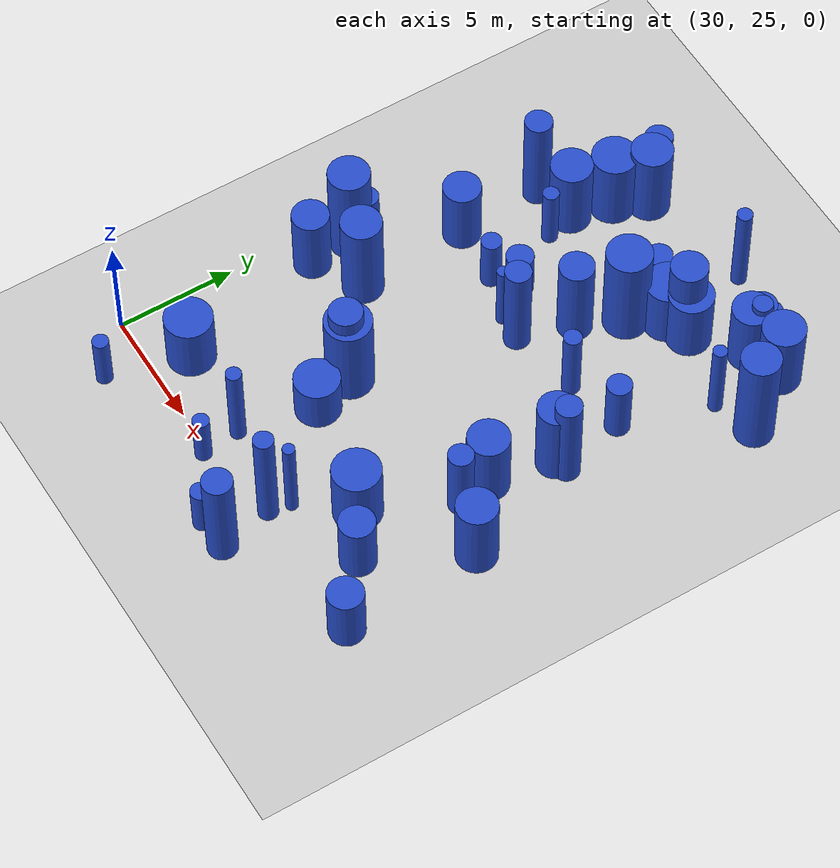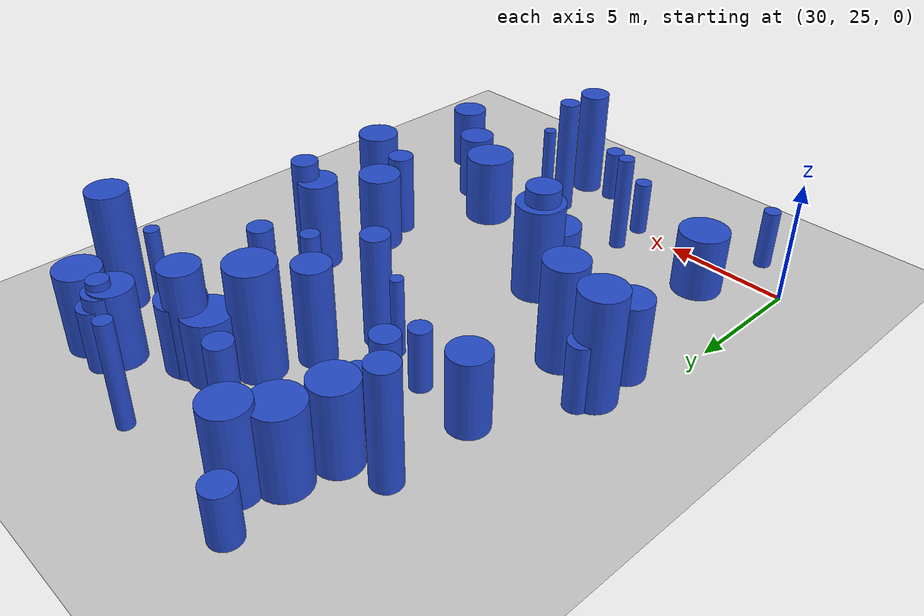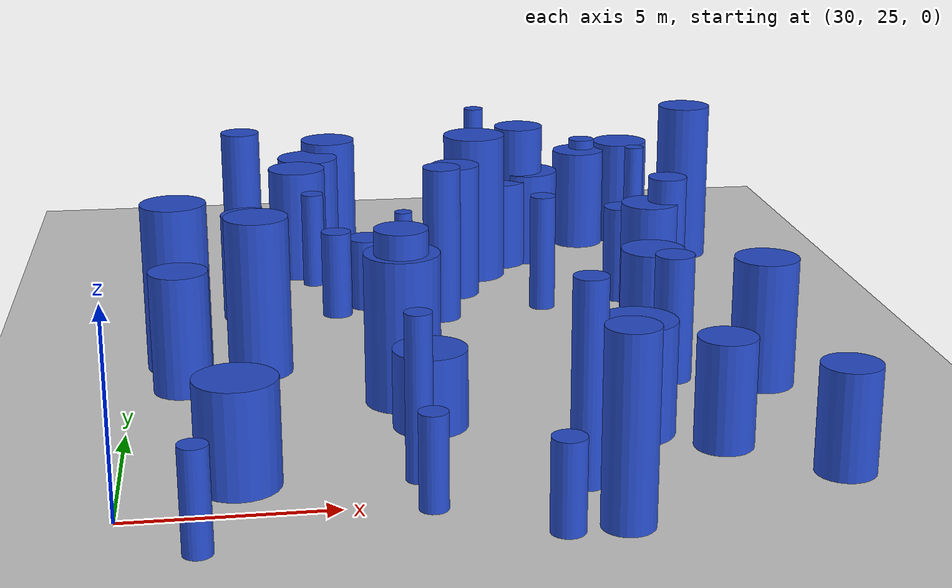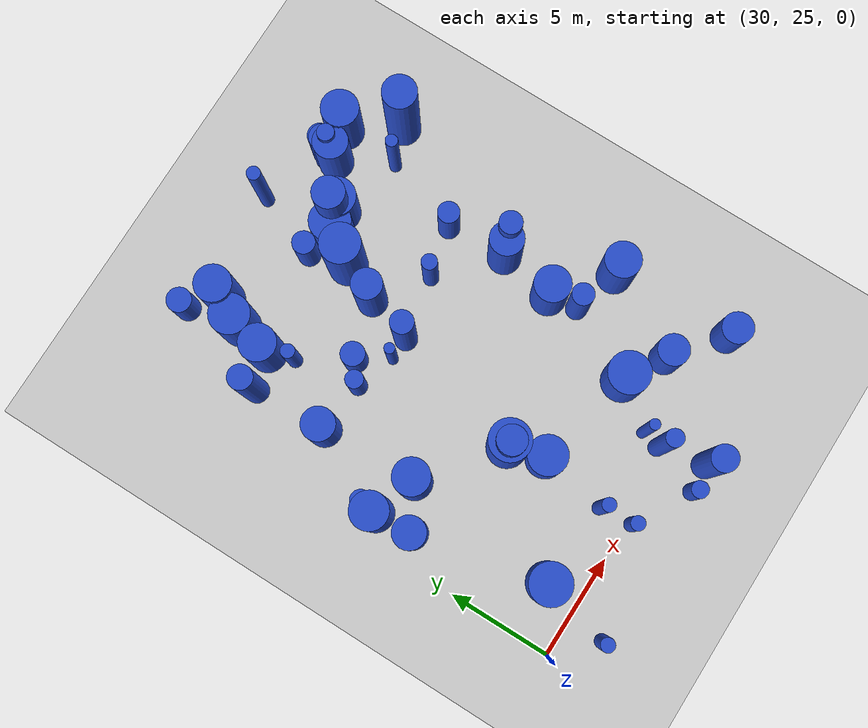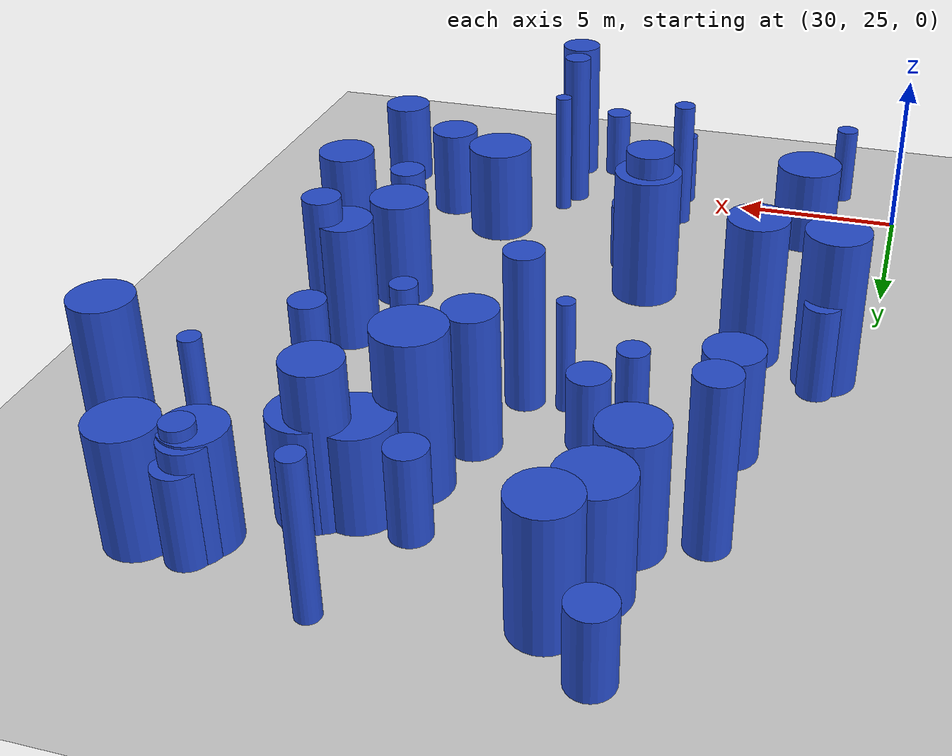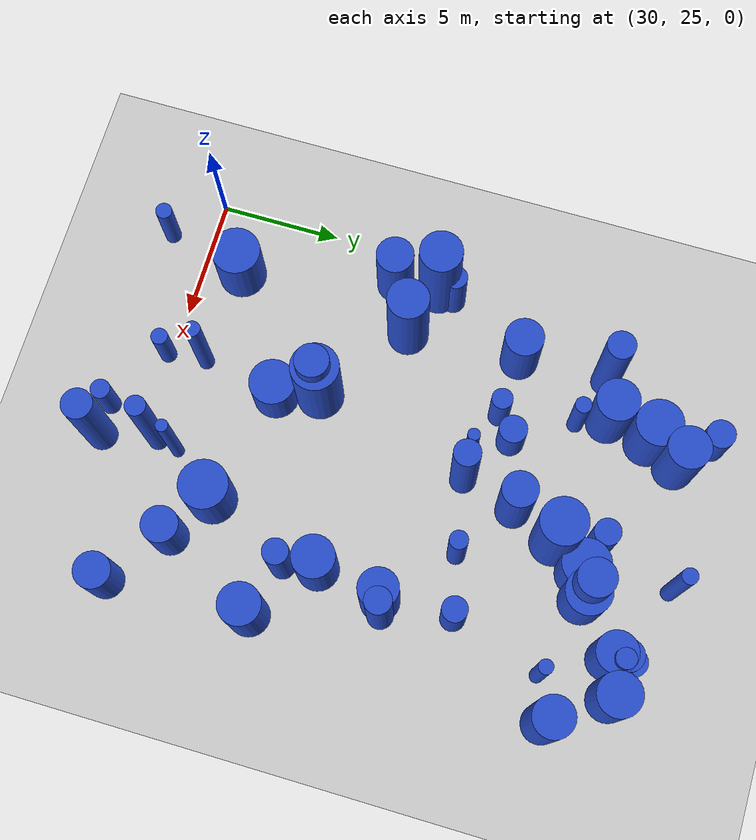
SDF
<sdf version="1.6">
 <world name="default">
  <model name="ground_plane">
   <static>1</static>
   <link name="link">
    <collision name="collision">
     <geometry><plane><normal>0 0 1</normal><size>100 100</size></plane></geometry>
     <surface><friction><ode><mu>100</mu><mu2>50</mu2></ode></friction></surface>
    </collision>
    <visual name="visual">
     <cast_shadows>0</cast_shadows>
     <geometry><plane><normal>0 0 1</normal><size>100 100</size></plane></geometry>
     <material>
      <script><uri>file://media/materials/scripts/gazebo.material</uri><name>Gazebo/Grey</name></script>
     </material>
    </visual>
   </link>
  </model>
  <model name="0">
   <static>0</static>
   <link name="link">
    <inertial>
     <mass>2</mass>
     <inertia><ixx>3.55486</ixx><ixy>0</ixy><ixz>0</ixz><iyy>3.55486</iyy><iyz>0</iyz><izz>0.297884</izz></inertia>
    </inertial>
    <collision name="collision">
     <geometry><cylinder><length>4.52056</length><radius>0.545787</radius></cylinder></geometry>
     <surface><contact><collide_without_contact>1</collide_without_contact></contact></surface>
    </collision>
    <visual name="visual">
     <geometry><cylinder><length>4.52056</length><radius>0.545787</radius></cylinder></geometry>
     <material>
      <script><uri>file://media/materials/scripts/gazebo.material</uri><name>Gazebo/Blue</name></script>
     </material>
    </visual>
    <gravity>0</gravity>
   </link>
   <pose>38.7282 38.0226 2.26028 0 -0 0</pose>
  </model>
  <model name="3">
   <static>0</static>
   <link name="link">
    <inertial>
     <mass>2</mass>
     <inertia><ixx>1.79748</ixx><ixy>0</ixy><ixz>0</ixz><iyy>1.79748</iyy><iyz>0</iyz><izz>0.403289</izz></inertia>
    </inertial>
    <collision name="collision">
     <geometry><cylinder><length>3.09435</length><radius>0.635051</radius></cylinder></geometry>
     <surface><contact><collide_without_contact>1</collide_without_contact></contact></surface>
    </collision>
    <visual name="visual">
     <geometry><cylinder><length>3.09435</length><radius>0.635051</radius></cylinder></geometry>
     <material>
      <script><uri>file://media/materials/scripts/gazebo.material</uri><name>Gazebo/Blue</name></script>
     </material>
    </visual>
    <gravity>0</gravity>
   </link>
   <pose>44.145 45.8026 1.54718 0 -0 0</pose>
  </model>
  <model name="7">
   <static>0</static>
   <link name="link">
    <inertial>
     <mass>2</mass>
     <inertia><ixx>4.24686</ixx><ixy>0</ixy><ixz>0</ixz><iyy>4.24686</iyy><iyz>0</iyz><izz>0.171142</izz></inertia>
    </inertial>
    <collision name="collision">
     <geometry><cylinder><length>4.99677</length><radius>0.413693</radius></cylinder></geometry>
     <surface><contact><collide_without_contact>1</collide_without_contact></contact></surface>
    </collision>
    <visual name="visual">
     <geometry><cylinder><length>4.99677</length><radius>0.413693</radius></cylinder></geometry>
     <material>
      <script><uri>file://media/materials/scripts/gazebo.material</uri><name>Gazebo/Blue</name></script>
     </material>
    </visual>
    <gravity>0</gravity>
   </link>
   <pose>40.5992 25.5949 2.49839 0 -0 0</pose>
  </model>
  <model name="11">
   <static>0</static>
   <link name="link">
    <inertial>
     <mass>2</mass>
     <inertia><ixx>1.48597</ixx><ixy>0</ixy><ixz>0</ixz><iyy>1.48597</iyy><iyz>0</iyz><izz>0.264549</izz></inertia>
    </inertial>
    <collision name="collision">
     <geometry><cylinder><length>2.84994</length><radius>0.514344</radius></cylinder></geometry>
     <surface><contact><collide_without_contact>1</collide_without_contact></contact></surface>
    </collision>
    <visual name="visual">
     <geometry><cylinder><length>2.84994</length><radius>0.514344</radius></cylinder></geometry>
     <material>
      <script><uri>file://media/materials/scripts/gazebo.material</uri><name>Gazebo/Blue</name></script>
     </material>
    </visual>
    <gravity>0</gravity>
   </link>
   <pose>44.2752 39.1553 1.42497 0 -0 0</pose>
  </model>
  <model name="15">
   <static>0</static>
   <link name="link">
    <inertial>
     <mass>2</mass>
     <inertia><ixx>1.70661</ixx><ixy>0</ixy><ixz>0</ixz><iyy>1.70661</iyy><iyz>0</iyz><izz>0.956436</izz></inertia>
    </inertial>
    <collision name="collision">
     <geometry><cylinder><length>2.71484</length><radius>0.977976</radius></cylinder></geometry>
     <surface><contact><collide_without_contact>1</collide_without_contact></contact></surface>
    </collision>
    <visual name="visual">
     <geometry><cylinder><length>2.71484</length><radius>0.977976</radius></cylinder></geometry>
     <material>
      <script><uri>file://media/materials/scripts/gazebo.material</uri><name>Gazebo/Blue</name></script>
     </material>
    </visual>
    <gravity>0</gravity>
   </link>
   <pose>41.1423 43.5016 1.35742 0 -0 0</pose>
  </model>
  <model name="18">
   <static>0</static>
   <link name="link">
    <inertial>
     <mass>2</mass>
     <inertia><ixx>2.27941</ixx><ixy>0</ixy><ixz>0</ixz><iyy>2.27941</iyy><iyz>0</iyz><izz>0.900366</izz></inertia>
    </inertial>
    <collision name="collision">
     <geometry><cylinder><length>3.31291</length><radius>0.948876</radius></cylinder></geometry>
     <surface><contact><collide_without_contact>1</collide_without_contact></contact></surface>
    </collision>
    <visual name="visual">
     <geometry><cylinder><length>3.31291</length><radius>0.948876</radius></cylinder></geometry>
     <material>
      <script><uri>file://media/materials/scripts/gazebo.material</uri><name>Gazebo/Blue</name></script>
     </material>
    </visual>
    <gravity>0</gravity>
   </link>
   <pose>35.1638 44.8172 1.65646 0 -0 0</pose>
  </model>
  <model name="24">
   <static>0</static>
   <link name="link">
    <inertial>
     <mass>2</mass>
     <inertia><ixx>2.07239</ixx><ixy>0</ixy><ixz>0</ixz><iyy>2.07239</iyy><iyz>0</iyz><izz>0.74145</izz></inertia>
    </inertial>
    <collision name="collision">
     <geometry><cylinder><length>3.19531</length><radius>0.861075</radius></cylinder></geometry>
     <surface><contact><collide_without_contact>1</collide_without_contact></contact></surface>
    </collision>
    <visual name="visual">
     <geometry><cylinder><length>3.19531</length><radius>0.861075</radius></cylinder></geometry>
     <material>
      <script><uri>file://media/materials/scripts/gazebo.material</uri><name>Gazebo/Blue</name></script>
     </material>
    </visual>
    <gravity>0</gravity>
   </link>
   <pose>43.9047 33.4741 1.59766 0 -0 0</pose>
  </model>
  <model name="25">
   <static>0</static>
   <link name="link">
    <inertial>
     <mass>2</mass>
     <inertia><ixx>2.06566</ixx><ixy>0</ixy><ixz>0</ixz><iyy>2.06566</iyy><iyz>0</iyz><izz>0.169636</izz></inertia>
    </inertial>
    <collision name="collision">
     <geometry><cylinder><length>3.44747</length><radius>0.411869</radius></cylinder></geometry>
     <surface><contact><collide_without_contact>1</collide_without_contact></contact></surface>
    </collision>
    <visual name="visual">
     <geometry><cylinder><length>3.44747</length><radius>0.411869</radius></cylinder></geometry>
     <material>
      <script><uri>file://media/materials/scripts/gazebo.material</uri><name>Gazebo/Blue</name></script>
     </material>
    </visual>
    <gravity>0</gravity>
   </link>
   <pose>44.3259 45.7116 1.72374 0 -0 0</pose>
  </model>
  <model name="30">
   <static>0</static>
   <link name="link">
    <inertial>
     <mass>2</mass>
     <inertia>
      <ixx>0.948335</ixx>
      <ixy>0</ixy>
      <ixz>0</ixz>
      <iyy>0.948335</iyy>
      <iyz>0</iyz>
      <izz>0.118719</izz>
     </inertia>
    </inertial>
    <collision name="collision">
     <geometry><cylinder><length>2.30951</length><radius>0.344557</radius></cylinder></geometry>
     <surface><contact><collide_without_contact>1</collide_without_contact></contact></surface>
    </collision>
    <visual name="visual">
     <geometry><cylinder><length>2.30951</length><radius>0.344557</radius></cylinder></geometry>
     <material>
      <script><uri>file://media/materials/scripts/gazebo.material</uri><name>Gazebo/Blue</name></script>
     </material>
    </visual>
    <gravity>0</gravity>
   </link>
   <pose>36.9819 24.7904 1.15476 0 -0 0</pose>
  </model>
  <model name="36">
   <static>0</static>
   <link name="link">
    <inertial>
     <mass>2</mass>
     <inertia><ixx>1.15813</ixx><ixy>0</ixy><ixz>0</ixz><iyy>1.15813</iyy><iyz>0</iyz><izz>0.18494</izz></inertia>
    </inertial>
    <collision name="collision">
     <geometry><cylinder><length>2.52863</length><radius>0.430047</radius></cylinder></geometry>
     <surface><contact><collide_without_contact>1</collide_without_contact></contact></surface>
    </collision>
    <visual name="visual">
     <geometry><cylinder><length>2.52863</length><radius>0.430047</radius></cylinder></geometry>
     <material>
      <script><uri>file://media/materials/scripts/gazebo.material</uri><name>Gazebo/Blue</name></script>
     </material>
    </visual>
    <gravity>0</gravity>
   </link>
   <pose>35.7021 38.6987 1.26432 0 -0 0</pose>
  </model>
  <model name="37">
   <static>0</static>
   <link name="link">
    <inertial>
     <mass>2</mass>
     <inertia><ixx>3.10226</ixx><ixy>0</ixy><ixz>0</ixz><iyy>3.10226</iyy><iyz>0</iyz><izz>0.951705</izz></inertia>
    </inertial>
    <collision name="collision">
     <geometry><cylinder><length>3.96969</length><radius>0.975554</radius></cylinder></geometry>
     <surface><contact><collide_without_contact>1</collide_without_contact></contact></surface>
    </collision>
    <visual name="visual">
     <geometry><cylinder><length>3.96969</length><radius>0.975554</radius></cylinder></geometry>
     <material>
      <script><uri>file://media/materials/scripts/gazebo.material</uri><name>Gazebo/Blue</name></script>
     </material>
    </visual>
    <gravity>0</gravity>
   </link>
   <pose>36.9478 31.4151 1.98485 0 -0 0</pose>
  </model>
  <model name="39">
   <static>0</static>
   <link name="link">
    <inertial>
     <mass>2</mass>
     <inertia>
      <ixx>0.895212</ixx>
      <ixy>0</ixy>
      <ixz>0</ixz>
      <iyy>0.895212</iyy>
      <iyz>0</iyz>
      <izz>0.162805</izz>
     </inertia>
    </inertial>
    <collision name="collision">
     <geometry><cylinder><length>2.20972</length><radius>0.403491</radius></cylinder></geometry>
     <surface><contact><collide_without_contact>1</collide_without_contact></contact></surface>
    </collision>
    <visual name="visual">
     <geometry><cylinder><length>2.20972</length><radius>0.403491</radius></cylinder></geometry>
     <material>
      <script><uri>file://media/materials/scripts/gazebo.material</uri><name>Gazebo/Blue</name></script>
     </material>
    </visual>
    <gravity>0</gravity>
   </link>
   <pose>39.7052 23.2253 1.10486 0 -0 0</pose>
  </model>
  <model name="44">
   <static>0</static>
   <link name="link">
    <inertial>
     <mass>2</mass>
     <inertia><ixx>1.18069</ixx><ixy>0</ixy><ixz>0</ixz><iyy>1.18069</iyy><iyz>0</iyz><izz>0.295683</izz></inertia>
    </inertial>
    <collision name="collision">
     <geometry><cylinder><length>2.48939</length><radius>0.543768</radius></cylinder></geometry>
     <surface><contact><collide_without_contact>1</collide_without_contact></contact></surface>
    </collision>
    <visual name="visual">
     <geometry><cylinder><length>2.48939</length><radius>0.543768</radius></cylinder></geometry>
     <material>
      <script><uri>file://media/materials/scripts/gazebo.material</uri><name>Gazebo/Blue</name></script>
     </material>
    </visual>
    <gravity>0</gravity>
   </link>
   <pose>39.706 43.9992 1.2447 0 -0 0</pose>
  </model>
  <model name="46">
   <static>0</static>
   <link name="link">
    <inertial>
     <mass>2</mass>
     <inertia><ixx>2.80292</ixx><ixy>0</ixy><ixz>0</ixz><iyy>2.80292</iyy><iyz>0</iyz><izz>0.10545</izz></inertia>
    </inertial>
    <collision name="collision">
     <geometry><cylinder><length>4.06216</length><radius>0.32473</radius></cylinder></geometry>
     <surface><contact><collide_without_contact>1</collide_without_contact></contact></surface>
    </collision>
    <visual name="visual">
     <geometry><cylinder><length>4.06216</length><radius>0.32473</radius></cylinder></geometry>
     <material>
      <script><uri>file://media/materials/scripts/gazebo.material</uri><name>Gazebo/Blue</name></script>
     </material>
    </visual>
    <gravity>0</gravity>
   </link>
   <pose>36.8355 26.4172 2.03108 0 -0 0</pose>
  </model>
  <model name="47">
   <static>0</static>
   <link name="link">
    <inertial>
     <mass>2</mass>
     <inertia><ixx>1.90834</ixx><ixy>0</ixy><ixz>0</ixz><iyy>1.90834</iyy><iyz>0</iyz><izz>0.988377</izz></inertia>
    </inertial>
    <collision name="collision">
     <geometry><cylinder><length>2.91289</length><radius>0.994171</radius></cylinder></geometry>
     <surface><contact><collide_without_contact>1</collide_without_contact></contact></surface>
    </collision>
    <visual name="visual">
     <geometry><cylinder><length>2.91289</length><radius>0.994171</radius></cylinder></geometry>
     <material>
      <script><uri>file://media/materials/scripts/gazebo.material</uri><name>Gazebo/Blue</name></script>
     </material>
    </visual>
    <gravity>0</gravity>
   </link>
   <pose>42.3702 28.5407 1.45644 0 -0 0</pose>
  </model>
  <model name="49">
   <static>0</static>
   <link name="link">
    <inertial>
     <mass>2</mass>
     <inertia><ixx>3.82017</ixx><ixy>0</ixy><ixz>0</ixz><iyy>3.82017</iyy><iyz>0</iyz><izz>0.891197</izz></inertia>
    </inertial>
    <collision name="collision">
     <geometry><cylinder><length>4.49972</length><radius>0.944032</radius></cylinder></geometry>
     <surface><contact><collide_without_contact>1</collide_without_contact></contact></surface>
    </collision>
    <visual name="visual">
     <geometry><cylinder><length>4.49972</length><radius>0.944032</radius></cylinder></geometry>
     <material>
      <script><uri>file://media/materials/scripts/gazebo.material</uri><name>Gazebo/Blue</name></script>
     </material>
    </visual>
    <gravity>0</gravity>
   </link>
   <pose>40.2277 42.1705 2.24986 0 -0 0</pose>
  </model>
  <model name="50">
   <static>0</static>
   <link name="link">
    <inertial>
     <mass>2</mass>
     <inertia><ixx>4.39079</ixx><ixy>0</ixy><ixz>0</ixz><iyy>4.39079</iyy><iyz>0</iyz><izz>0.652635</izz></inertia>
    </inertial>
    <collision name="collision">
     <geometry><cylinder><length>4.9383</length><radius>0.807858</radius></cylinder></geometry>
     <surface><contact><collide_without_contact>1</collide_without_contact></contact></surface>
    </collision>
    <visual name="visual">
     <geometry><cylinder><length>4.9383</length><radius>0.807858</radius></cylinder></geometry>
     <material>
      <script><uri>file://media/materials/scripts/gazebo.material</uri><name>Gazebo/Blue</name></script>
     </material>
    </visual>
    <gravity>0</gravity>
   </link>
   <pose>47.2454 43.5549 2.46915 0 -0 0</pose>
  </model>
  <model name="55">
   <static>0</static>
   <link name="link">
    <inertial>
     <mass>2</mass>
     <inertia><ixx>1.46159</ixx><ixy>0</ixy><ixz>0</ixz><iyy>1.46159</iyy><iyz>0</iyz><izz>0.545159</izz></inertia>
    </inertial>
    <collision name="collision">
     <geometry><cylinder><length>2.67097</length><radius>0.738349</radius></cylinder></geometry>
     <surface><contact><collide_without_contact>1</collide_without_contact></contact></surface>
    </collision>
    <visual name="visual">
     <geometry><cylinder><length>2.67097</length><radius>0.738349</radius></cylinder></geometry>
     <material>
      <script><uri>file://media/materials/scripts/gazebo.material</uri><name>Gazebo/Blue</name></script>
     </material>
    </visual>
    <gravity>0</gravity>
   </link>
   <pose>46.6874 25.4916 1.33548 0 -0 0</pose>
  </model>
  <model name="62">
   <static>0</static>
   <link name="link">
    <inertial>
     <mass>2</mass>
     <inertia><ixx>2.04969</ixx><ixy>0</ixy><ixz>0</ixz><iyy>2.04969</iyy><iyz>0</iyz><izz>0.595965</izz></inertia>
    </inertial>
    <collision name="collision">
     <geometry><cylinder><length>3.24195</length><radius>0.771988</radius></cylinder></geometry>
     <surface><contact><collide_without_contact>1</collide_without_contact></contact></surface>
    </collision>
    <visual name="visual">
     <geometry><cylinder><length>3.24195</length><radius>0.771988</radius></cylinder></geometry>
     <material>
      <script><uri>file://media/materials/scripts/gazebo.material</uri><name>Gazebo/Blue</name></script>
     </material>
    </visual>
    <gravity>0</gravity>
   </link>
   <pose>31.3314 33.0011 1.62098 0 -0 0</pose>
  </model>
  <model name="71">
   <static>0</static>
   <link name="link">
    <inertial>
     <mass>2</mass>
     <inertia><ixx>1.26288</ixx><ixy>0</ixy><ixz>0</ixz><iyy>1.26288</iyy><iyz>0</iyz><izz>0.333359</izz></inertia>
    </inertial>
    <collision name="collision">
     <geometry><cylinder><length>2.5646</length><radius>0.577373</radius></cylinder></geometry>
     <surface><contact><collide_without_contact>1</collide_without_contact></contact></surface>
    </collision>
    <visual name="visual">
     <geometry><cylinder><length>2.5646</length><radius>0.577373</radius></cylinder></geometry>
     <material>
      <script><uri>file://media/materials/scripts/gazebo.material</uri><name>Gazebo/Blue</name></script>
     </material>
    </visual>
    <gravity>0</gravity>
   </link>
   <pose>44.2708 46.0973 1.2823 0 -0 0</pose>
  </model>
  <model name="73">
   <static>0</static>
   <link name="link">
    <inertial>
     <mass>2</mass>
     <inertia><ixx>2.00036</ixx><ixy>0</ixy><ixz>0</ixz><iyy>2.00036</iyy><iyz>0</iyz><izz>0.690071</izz></inertia>
    </inertial>
    <collision name="collision">
     <geometry><cylinder><length>3.1515</length><radius>0.830705</radius></cylinder></geometry>
     <surface><contact><collide_without_contact>1</collide_without_contact></contact></surface>
    </collision>
    <visual name="visual">
     <geometry><cylinder><length>3.1515</length><radius>0.830705</radius></cylinder></geometry>
     <material>
      <script><uri>file://media/materials/scripts/gazebo.material</uri><name>Gazebo/Blue</name></script>
     </material>
    </visual>
    <gravity>0</gravity>
   </link>
   <pose>44.1486 45.3804 1.57575 0 -0 0</pose>
  </model>
  <model name="75">
   <static>0</static>
   <link name="link">
    <inertial>
     <mass>2</mass>
     <inertia><ixx>1.82506</ixx><ixy>0</ixy><ixz>0</ixz><iyy>1.82506</iyy><iyz>0</iyz><izz>0.862483</izz></inertia>
    </inertial>
    <collision name="collision">
     <geometry><cylinder><length>2.89187</length><radius>0.928699</radius></cylinder></geometry>
     <surface><contact><collide_without_contact>1</collide_without_contact></contact></surface>
    </collision>
    <visual name="visual">
     <geometry><cylinder><length>2.89187</length><radius>0.928699</radius></cylinder></geometry>
     <material>
      <script><uri>file://media/materials/scripts/gazebo.material</uri><name>Gazebo/Blue</name></script>
     </material>
    </visual>
    <gravity>0</gravity>
   </link>
   <pose>42.203 43.8436 1.44593 0 -0 0</pose>
  </model>
  <model name="77">
   <static>0</static>
   <link name="link">
    <inertial>
     <mass>2</mass>
     <inertia><ixx>3.70884</ixx><ixy>0</ixy><ixz>0</ixz><iyy>3.70884</iyy><iyz>0</iyz><izz>0.383531</izz></inertia>
    </inertial>
    <collision name="collision">
     <geometry><cylinder><length>4.59374</length><radius>0.619299</radius></cylinder></geometry>
     <surface><contact><collide_without_contact>1</collide_without_contact></contact></surface>
    </collision>
    <visual name="visual">
     <geometry><cylinder><length>4.59374</length><radius>0.619299</radius></cylinder></geometry>
     <material>
      <script><uri>file://media/materials/scripts/gazebo.material</uri><name>Gazebo/Blue</name></script>
     </material>
    </visual>
    <gravity>0</gravity>
   </link>
   <pose>41.0513 23.3285 2.29687 0 -0 0</pose>
  </model>
  <model name="91">
   <static>0</static>
   <link name="link">
    <inertial>
     <mass>2</mass>
     <inertia><ixx>1.36713</ixx><ixy>0</ixy><ixz>0</ixz><iyy>1.36713</iyy><iyz>0</iyz><izz>0.24454</izz></inertia>
    </inertial>
    <collision name="collision">
     <geometry><cylinder><length>2.73298</length><radius>0.49451</radius></cylinder></geometry>
     <surface><contact><collide_without_contact>1</collide_without_contact></contact></surface>
    </collision>
    <visual name="visual">
     <geometry><cylinder><length>2.73298</length><radius>0.49451</radius></cylinder></geometry>
     <material>
      <script><uri>file://media/materials/scripts/gazebo.material</uri><name>Gazebo/Blue</name></script>
     </material>
    </visual>
    <gravity>0</gravity>
   </link>
   <pose>31.3781 35.5506 1.36649 0 -0 0</pose>
  </model>
  <model name="93">
   <static>0</static>
   <link name="link">
    <inertial>
     <mass>2</mass>
     <inertia>
      <ixx>1.77363</ixx>
      <ixy>0</ixy>
      <ixz>0</ixz>
      <iyy>1.77363</iyy>
      <iyz>0</iyz>
      <izz>0.0645447</izz>
     </inertia>
    </inertial>
    <collision name="collision">
     <geometry><cylinder><length>3.23236</length><radius>0.254056</radius></cylinder></geometry>
     <surface><contact><collide_without_contact>1</collide_without_contact></contact></surface>
    </collision>
    <visual name="visual">
     <geometry><cylinder><length>3.23236</length><radius>0.254056</radius></cylinder></geometry>
     <material>
      <script><uri>file://media/materials/scripts/gazebo.material</uri><name>Gazebo/Blue</name></script>
     </material>
    </visual>
    <gravity>0</gravity>
   </link>
   <pose>37.6218 38.031 1.61618 0 -0 0</pose>
  </model>
  <model name="94">
   <static>0</static>
   <link name="link">
    <inertial>
     <mass>2</mass>
     <inertia><ixx>1.43984</ixx><ixy>0</ixy><ixz>0</ixz><iyy>1.43984</iyy><iyz>0</iyz><izz>0.112897</izz></inertia>
    </inertial>
    <collision name="collision">
     <geometry><cylinder><length>2.88103</length><radius>0.336001</radius></cylinder></geometry>
     <surface><contact><collide_without_contact>1</collide_without_contact></contact></surface>
    </collision>
    <visual name="visual">
     <geometry><cylinder><length>2.88103</length><radius>0.336001</radius></cylinder></geometry>
     <material>
      <script><uri>file://media/materials/scripts/gazebo.material</uri><name>Gazebo/Blue</name></script>
     </material>
    </visual>
    <gravity>0</gravity>
   </link>
   <pose>35.1663 41.8146 1.44052 0 -0 0</pose>
  </model>
  <model name="95">
   <static>0</static>
   <link name="link">
    <inertial>
     <mass>2</mass>
     <inertia>
      <ixx>0.940801</ixx>
      <ixy>0</ixy>
      <ixz>0</ixz>
      <iyy>0.940801</iyy>
      <iyz>0</iyz>
      <izz>0.344368</izz>
     </inertia>
    </inertial>
    <collision name="collision">
     <geometry><cylinder><length>2.14749</length><radius>0.586829</radius></cylinder></geometry>
     <surface><contact><collide_without_contact>1</collide_without_contact></contact></surface>
    </collision>
    <visual name="visual">
     <geometry><cylinder><length>2.14749</length><radius>0.586829</radius></cylinder></geometry>
     <material>
      <script><uri>file://media/materials/scripts/gazebo.material</uri><name>Gazebo/Blue</name></script>
     </material>
    </visual>
    <gravity>0</gravity>
   </link>
   <pose>34.5638 47.3775 1.07374 0 -0 0</pose>
  </model>
  <model name="114">
   <static>0</static>
   <link name="link">
    <inertial>
     <mass>2</mass>
     <inertia><ixx>1.56107</ixx><ixy>0</ixy><ixz>0</ixz><iyy>1.56107</iyy><iyz>0</iyz><izz>0.543529</izz></inertia>
    </inertial>
    <collision name="collision">
     <geometry><cylinder><length>2.78133</length><radius>0.737244</radius></cylinder></geometry>
     <surface><contact><collide_without_contact>1</collide_without_contact></contact></surface>
    </collision>
    <visual name="visual">
     <geometry><cylinder><length>2.78133</length><radius>0.737244</radius></cylinder></geometry>
     <material>
      <script><uri>file://media/materials/scripts/gazebo.material</uri><name>Gazebo/Blue</name></script>
     </material>
    </visual>
    <gravity>0</gravity>
   </link>
   <pose>44.3012 27.4066 1.39067 0 -0 0</pose>
  </model>
  <model name="116">
   <static>0</static>
   <link name="link">
    <inertial>
     <mass>2</mass>
     <inertia>
      <ixx>2.61659</ixx>
      <ixy>0</ixy>
      <ixz>0</ixz>
      <iyy>2.61659</iyy>
      <iyz>0</iyz>
      <izz>0.0647721</izz>
     </inertia>
    </inertial>
    <collision name="collision">
     <geometry><cylinder><length>3.93767</length><radius>0.254504</radius></cylinder></geometry>
     <surface><contact><collide_without_contact>1</collide_without_contact></contact></surface>
    </collision>
    <visual name="visual">
     <geometry><cylinder><length>3.93767</length><radius>0.254504</radius></cylinder></geometry>
     <material>
      <script><uri>file://media/materials/scripts/gazebo.material</uri><name>Gazebo/Blue</name></script>
     </material>
    </visual>
    <gravity>0</gravity>
   </link>
   <pose>40.8198 26.5162 1.96883 0 -0 0</pose>
  </model>
  <model name="118">
   <static>0</static>
   <link name="link">
    <inertial>
     <mass>2</mass>
     <inertia><ixx>1.89909</ixx><ixy>0</ixy><ixz>0</ixz><iyy>1.89909</iyy><iyz>0</iyz><izz>0.622758</izz></inertia>
    </inertial>
    <collision name="collision">
     <geometry><cylinder><length>3.08646</length><radius>0.78915</radius></cylinder></geometry>
     <surface><contact><collide_without_contact>1</collide_without_contact></contact></surface>
    </collision>
    <visual name="visual">
     <geometry><cylinder><length>3.08646</length><radius>0.78915</radius></cylinder></geometry>
     <material>
      <script><uri>file://media/materials/scripts/gazebo.material</uri><name>Gazebo/Blue</name></script>
     </material>
    </visual>
    <gravity>0</gravity>
   </link>
   <pose>33.1794 38.8872 1.54323 0 -0 0</pose>
  </model>
  <model name="131">
   <static>0</static>
   <link name="link">
    <inertial>
     <mass>2</mass>
     <inertia><ixx>3.80125</ixx><ixy>0</ixy><ixz>0</ixz><iyy>3.80125</iyy><iyz>0</iyz><izz>0.478681</izz></inertia>
    </inertial>
    <collision name="collision">
     <geometry><cylinder><length>4.62293</length><radius>0.691868</radius></cylinder></geometry>
     <surface><contact><collide_without_contact>1</collide_without_contact></contact></surface>
    </collision>
    <visual name="visual">
     <geometry><cylinder><length>4.62293</length><radius>0.691868</radius></cylinder></geometry>
     <material>
      <script><uri>file://media/materials/scripts/gazebo.material</uri><name>Gazebo/Blue</name></script>
     </material>
    </visual>
    <gravity>0</gravity>
   </link>
   <pose>36.9289 31.3375 2.31146 0 -0 0</pose>
  </model>
  <model name="133">
   <static>0</static>
   <link name="link">
    <inertial>
     <mass>2</mass>
     <inertia><ixx>2.01033</ixx><ixy>0</ixy><ixz>0</ixz><iyy>2.01033</iyy><iyz>0</iyz><izz>0.140787</izz></inertia>
    </inertial>
    <collision name="collision">
     <geometry><cylinder><length>3.41169</length><radius>0.375216</radius></cylinder></geometry>
     <surface><contact><collide_without_contact>1</collide_without_contact></contact></surface>
    </collision>
    <visual name="visual">
     <geometry><cylinder><length>3.41169</length><radius>0.375216</radius></cylinder></geometry>
     <material>
      <script><uri>file://media/materials/scripts/gazebo.material</uri><name>Gazebo/Blue</name></script>
     </material>
    </visual>
    <gravity>0</gravity>
   </link>
   <pose>41.7939 38.5926 1.70585 0 -0 0</pose>
  </model>
  <model name="145">
   <static>0</static>
   <link name="link">
    <inertial>
     <mass>2</mass>
     <inertia><ixx>2.22651</ixx><ixy>0</ixy><ixz>0</ixz><iyy>2.22651</iyy><iyz>0</iyz><izz>0.788437</izz></inertia>
    </inertial>
    <collision name="collision">
     <geometry><cylinder><length>3.31569</length><radius>0.88794</radius></cylinder></geometry>
     <surface><contact><collide_without_contact>1</collide_without_contact></contact></surface>
    </collision>
    <visual name="visual">
     <geometry><cylinder><length>3.31569</length><radius>0.88794</radius></cylinder></geometry>
     <material>
      <script><uri>file://media/materials/scripts/gazebo.material</uri><name>Gazebo/Blue</name></script>
     </material>
    </visual>
    <gravity>0</gravity>
   </link>
   <pose>45.6499 45.8225 1.65784 0 -0 0</pose>
  </model>
  <model name="152">
   <static>0</static>
   <link name="link">
    <inertial>
     <mass>2</mass>
     <inertia><ixx>2.1005</ixx><ixy>0</ixy><ixz>0</ixz><iyy>2.1005</iyy><iyz>0</iyz><izz>0.270482</izz></inertia>
    </inertial>
    <collision name="collision">
     <geometry><cylinder><length>3.43388</length><radius>0.520079</radius></cylinder></geometry>
     <surface><contact><collide_without_contact>1</collide_without_contact></contact></surface>
    </collision>
    <visual name="visual">
     <geometry><cylinder><length>3.43388</length><radius>0.520079</radius></cylinder></geometry>
     <material>
      <script><uri>file://media/materials/scripts/gazebo.material</uri><name>Gazebo/Blue</name></script>
     </material>
    </visual>
    <gravity>0</gravity>
   </link>
   <pose>44.16 32.0785 1.71694 0 -0 0</pose>
  </model>
  <model name="157">
   <static>0</static>
   <link name="link">
    <inertial>
     <mass>2</mass>
     <inertia><ixx>1.12934</ixx><ixy>0</ixy><ixz>0</ixz><iyy>1.12934</iyy><iyz>0</iyz><izz>0.888814</izz></inertia>
    </inertial>
    <collision name="collision">
     <geometry><cylinder><length>2.02722</length><radius>0.942769</radius></cylinder></geometry>
     <surface><contact><collide_without_contact>1</collide_without_contact></contact></surface>
    </collision>
    <visual name="visual">
     <geometry><cylinder><length>2.02722</length><radius>0.942769</radius></cylinder></geometry>
     <material>
      <script><uri>file://media/materials/scripts/gazebo.material</uri><name>Gazebo/Blue</name></script>
     </material>
    </visual>
    <gravity>0</gravity>
   </link>
   <pose>37.4515 29.6656 1.01361 0 -0 0</pose>
  </model>
  <model name="159">
   <static>0</static>
   <link name="link">
    <inertial>
     <mass>2</mass>
     <inertia><ixx>2.35713</ixx><ixy>0</ixy><ixz>0</ixz><iyy>2.35713</iyy><iyz>0</iyz><izz>0.716433</izz></inertia>
    </inertial>
    <collision name="collision">
     <geometry><cylinder><length>3.46316</length><radius>0.846423</radius></cylinder></geometry>
     <surface><contact><collide_without_contact>1</collide_without_contact></contact></surface>
    </collision>
    <visual name="visual">
     <geometry><cylinder><length>3.46316</length><radius>0.846423</radius></cylinder></geometry>
     <material>
      <script><uri>file://media/materials/scripts/gazebo.material</uri><name>Gazebo/Blue</name></script>
     </material>
    </visual>
    <gravity>0</gravity>
   </link>
   <pose>46.4214 31.3944 1.73158 0 -0 0</pose>
  </model>
  <model name="166">
   <static>0</static>
   <link name="link">
    <inertial>
     <mass>2</mass>
     <inertia><ixx>1.08491</ixx><ixy>0</ixy><ixz>0</ixz><iyy>1.08491</iyy><iyz>0</iyz><izz>0.115595</izz></inertia>
    </inertial>
    <collision name="collision">
     <geometry><cylinder><length>2.48247</length><radius>0.339992</radius></cylinder></geometry>
     <surface><contact><collide_without_contact>1</collide_without_contact></contact></surface>
    </collision>
    <visual name="visual">
     <geometry><cylinder><length>2.48247</length><radius>0.339992</radius></cylinder></geometry>
     <material>
      <script><uri>file://media/materials/scripts/gazebo.material</uri><name>Gazebo/Blue</name></script>
     </material>
    </visual>
    <gravity>0</gravity>
   </link>
   <pose>31.8331 23.245 1.24124 0 -0 0</pose>
  </model>
  <model name="170">
   <static>0</static>
   <link name="link">
    <inertial>
     <mass>2</mass>
     <inertia>
      <ixx>0.902578</ixx>
      <ixy>0</ixy>
      <ixz>0</ixz>
      <iyy>0.902578</iyy>
      <iyz>0</iyz>
      <izz>0.329341</izz>
     </inertia>
    </inertial>
    <collision name="collision">
     <geometry><cylinder><length>2.10415</length><radius>0.573883</radius></cylinder></geometry>
     <surface><contact><collide_without_contact>1</collide_without_contact></contact></surface>
    </collision>
    <visual name="visual">
     <geometry><cylinder><length>2.10415</length><radius>0.573883</radius></cylinder></geometry>
     <material>
      <script><uri>file://media/materials/scripts/gazebo.material</uri><name>Gazebo/Blue</name></script>
     </material>
    </visual>
    <gravity>0</gravity>
   </link>
   <pose>36.6556 39.4396 1.05207 0 -0 0</pose>
  </model>
  <model name="174">
   <static>0</static>
   <link name="link">
    <inertial>
     <mass>2</mass>
     <inertia><ixx>3.44519</ixx><ixy>0</ixy><ixz>0</ixz><iyy>3.44519</iyy><iyz>0</iyz><izz>0.726752</izz></inertia>
    </inertial>
    <collision name="collision">
     <geometry><cylinder><length>4.3001</length><radius>0.852498</radius></cylinder></geometry>
     <surface><contact><collide_without_contact>1</collide_without_contact></contact></surface>
    </collision>
    <visual name="visual">
     <geometry><cylinder><length>4.3001</length><radius>0.852498</radius></cylinder></geometry>
     <material>
      <script><uri>file://media/materials/scripts/gazebo.material</uri><name>Gazebo/Blue</name></script>
     </material>
    </visual>
    <gravity>0</gravity>
   </link>
   <pose>33.3684 34.1408 2.15005 0 -0 0</pose>
  </model>
  <model name="178">
   <static>0</static>
   <link name="link">
    <inertial>
     <mass>2</mass>
     <inertia>
      <ixx>2.40858</ixx>
      <ixy>0</ixy>
      <ixz>0</ixz>
      <iyy>2.40858</iyy>
      <iyz>0</iyz>
      <izz>0.0861653</izz>
     </inertia>
    </inertial>
    <collision name="collision">
     <geometry><cylinder><length>3.76736</length><radius>0.293539</radius></cylinder></geometry>
     <surface><contact><collide_without_contact>1</collide_without_contact></contact></surface>
    </collision>
    <visual name="visual">
     <geometry><cylinder><length>3.76736</length><radius>0.293539</radius></cylinder></geometry>
     <material>
      <script><uri>file://media/materials/scripts/gazebo.material</uri><name>Gazebo/Blue</name></script>
     </material>
    </visual>
    <gravity>0</gravity>
   </link>
   <pose>45.4931 42.9194 1.88368 0 -0 0</pose>
  </model>
  <model name="191">
   <static>0</static>
   <link name="link">
    <inertial>
     <mass>2</mass>
     <inertia><ixx>2.5267</ixx><ixy>0</ixy><ixz>0</ixz><iyy>2.5267</iyy><iyz>0</iyz><izz>0.749953</izz></inertia>
    </inertial>
    <collision name="collision">
     <geometry><cylinder><length>3.5931</length><radius>0.865998</radius></cylinder></geometry>
     <surface><contact><collide_without_contact>1</collide_without_contact></contact></surface>
    </collision>
    <visual name="visual">
     <geometry><cylinder><length>3.5931</length><radius>0.865998</radius></cylinder></geometry>
     <material>
      <script><uri>file://media/materials/scripts/gazebo.material</uri><name>Gazebo/Blue</name></script>
     </material>
    </visual>
    <gravity>0</gravity>
   </link>
   <pose>35.8904 46.112 1.79655 0 -0 0</pose>
  </model>
  <model name="199">
   <static>0</static>
   <link name="link">
    <inertial>
     <mass>2</mass>
     <inertia><ixx>2.64796</ixx><ixy>0</ixy><ixz>0</ixz><iyy>2.64796</iyy><iyz>0</iyz><izz>0.64376</izz></inertia>
    </inertial>
    <collision name="collision">
     <geometry><cylinder><length>3.73584</length><radius>0.802346</radius></cylinder></geometry>
     <surface><contact><collide_without_contact>1</collide_without_contact></contact></surface>
    </collision>
    <visual name="visual">
     <geometry><cylinder><length>3.73584</length><radius>0.802346</radius></cylinder></geometry>
     <material>
      <script><uri>file://media/materials/scripts/gazebo.material</uri><name>Gazebo/Blue</name></script>
     </material>
    </visual>
    <gravity>0</gravity>
   </link>
   <pose>44.4383 36.2114 1.86792 0 -0 0</pose>
  </model>
  <model name="203">
   <static>0</static>
   <link name="link">
    <inertial>
     <mass>2</mass>
     <inertia><ixx>3.10876</ixx><ixy>0</ixy><ixz>0</ixz><iyy>3.10876</iyy><iyz>0</iyz><izz>0.104013</izz></inertia>
    </inertial>
    <collision name="collision">
     <geometry><cylinder><length>4.28259</length><radius>0.322511</radius></cylinder></geometry>
     <surface><contact><collide_without_contact>1</collide_without_contact></contact></surface>
    </collision>
    <visual name="visual">
     <geometry><cylinder><length>4.28259</length><radius>0.322511</radius></cylinder></geometry>
     <material>
      <script><uri>file://media/materials/scripts/gazebo.material</uri><name>Gazebo/Blue</name></script>
     </material>
    </visual>
    <gravity>0</gravity>
   </link>
   <pose>40.8826 47.131 2.14129 0 -0 0</pose>
  </model>
  <model name="213">
   <static>0</static>
   <link name="link">
    <inertial>
     <mass>2</mass>
     <inertia><ixx>3.45654</ixx><ixy>0</ixy><ixz>0</ixz><iyy>3.45654</iyy><iyz>0</iyz><izz>0.582944</izz></inertia>
    </inertial>
    <collision name="collision">
     <geometry><cylinder><length>4.3578</length><radius>0.763508</radius></cylinder></geometry>
     <surface><contact><collide_without_contact>1</collide_without_contact></contact></surface>
    </collision>
    <visual name="visual">
     <geometry><cylinder><length>4.3578</length><radius>0.763508</radius></cylinder></geometry>
     <material>
      <script><uri>file://media/materials/scripts/gazebo.material</uri><name>Gazebo/Blue</name></script>
     </material>
    </visual>
    <gravity>0</gravity>
   </link>
   <pose>41.8911 43.8704 2.1789 0 -0 0</pose>
  </model>
  <model name="219">
   <static>0</static>
   <link name="link">
    <inertial>
     <mass>2</mass>
     <inertia><ixx>3.40785</ixx><ixy>0</ixy><ixz>0</ixz><iyy>3.40785</iyy><iyz>0</iyz><izz>0.292131</izz></inertia>
    </inertial>
    <collision name="collision">
     <geometry><cylinder><length>4.42388</length><radius>0.540492</radius></cylinder></geometry>
     <surface><contact><collide_without_contact>1</collide_without_contact></contact></surface>
    </collision>
    <visual name="visual">
     <geometry><cylinder><length>4.42388</length><radius>0.540492</radius></cylinder></geometry>
     <material>
      <script><uri>file://media/materials/scripts/gazebo.material</uri><name>Gazebo/Blue</name></script>
     </material>
    </visual>
    <gravity>0</gravity>
   </link>
   <pose>44.9723 36.3747 2.21194 0 -0 0</pose>
  </model>
  <model name="220">
   <static>0</static>
   <link name="link">
    <inertial>
     <mass>2</mass>
     <inertia><ixx>3.82869</ixx><ixy>0</ixy><ixz>0</ixz><iyy>3.82869</iyy><iyz>0</iyz><izz>0.763171</izz></inertia>
    </inertial>
    <collision name="collision">
     <geometry><cylinder><length>4.54781</length><radius>0.873596</radius></cylinder></geometry>
     <surface><contact><collide_without_contact>1</collide_without_contact></contact></surface>
    </collision>
    <visual name="visual">
     <geometry><cylinder><length>4.54781</length><radius>0.873596</radius></cylinder></geometry>
     <material>
      <script><uri>file://media/materials/scripts/gazebo.material</uri><name>Gazebo/Blue</name></script>
     </material>
    </visual>
    <gravity>0</gravity>
   </link>
   <pose>31.2194 34.8639 2.27391 0 -0 0</pose>
  </model>
  <model name="230">
   <static>0</static>
   <link name="link">
    <inertial>
     <mass>2</mass>
     <inertia><ixx>2.95672</ixx><ixy>0</ixy><ixz>0</ixz><iyy>2.95672</iyy><iyz>0</iyz><izz>0.521312</izz></inertia>
    </inertial>
    <collision name="collision">
     <geometry><cylinder><length>4.02199</length><radius>0.722019</radius></cylinder></geometry>
     <surface><contact><collide_without_contact>1</collide_without_contact></contact></surface>
    </collision>
    <visual name="visual">
     <geometry><cylinder><length>4.02199</length><radius>0.722019</radius></cylinder></geometry>
     <material>
      <script><uri>file://media/materials/scripts/gazebo.material</uri><name>Gazebo/Blue</name></script>
     </material>
    </visual>
    <gravity>0</gravity>
   </link>
   <pose>39.3979 40.2975 2.01099 0 -0 0</pose>
  </model>
  <model name="238">
   <static>0</static>
   <link name="link">
    <inertial>
     <mass>2</mass>
     <inertia><ixx>3.85377</ixx><ixy>0</ixy><ixz>0</ixz><iyy>3.85377</iyy><iyz>0</iyz><izz>0.329647</izz></inertia>
    </inertial>
    <collision name="collision">
     <geometry><cylinder><length>4.70465</length><radius>0.574149</radius></cylinder></geometry>
     <surface><contact><collide_without_contact>1</collide_without_contact></contact></surface>
    </collision>
    <visual name="visual">
     <geometry><cylinder><length>4.70465</length><radius>0.574149</radius></cylinder></geometry>
     <material>
      <script><uri>file://media/materials/scripts/gazebo.material</uri><name>Gazebo/Blue</name></script>
     </material>
    </visual>
    <gravity>0</gravity>
   </link>
   <pose>33.0431 42.5367 2.35232 0 -0 0</pose>
  </model>
  <model name="246">
   <static>0</static>
   <link name="link">
    <inertial>
     <mass>2</mass>
     <inertia><ixx>1.64127</ixx><ixy>0</ixy><ixz>0</ixz><iyy>1.64127</iyy><iyz>0</iyz><izz>0.991313</izz></inertia>
    </inertial>
    <collision name="collision">
     <geometry><cylinder><length>2.62177</length><radius>0.995647</radius></cylinder></geometry>
     <surface><contact><collide_without_contact>1</collide_without_contact></contact></surface>
    </collision>
    <visual name="visual">
     <geometry><cylinder><length>2.62177</length><radius>0.995647</radius></cylinder></geometry>
     <material>
      <script><uri>file://media/materials/scripts/gazebo.material</uri><name>Gazebo/Blue</name></script>
     </material>
    </visual>
    <gravity>0</gravity>
   </link>
   <pose>32.7238 26.6613 1.31088 0 -0 0</pose>
  </model>
  <model name="247">
   <static>0</static>
   <link name="link">
    <inertial>
     <mass>2</mass>
     <inertia><ixx>2.30352</ixx><ixy>0</ixy><ixz>0</ixz><iyy>2.30352</iyy><iyz>0</iyz><izz>0.759355</izz></inertia>
    </inertial>
    <collision name="collision">
     <geometry><cylinder><length>3.3975</length><radius>0.87141</radius></cylinder></geometry>
     <surface><contact><collide_without_contact>1</collide_without_contact></contact></surface>
    </collision>
    <visual name="visual">
     <geometry><cylinder><length>3.3975</length><radius>0.87141</radius></cylinder></geometry>
     <material>
      <script><uri>file://media/materials/scripts/gazebo.material</uri><name>Gazebo/Blue</name></script>
     </material>
    </visual>
    <gravity>0</gravity>
   </link>
   <pose>34.7477 43.0469 1.69875 0 -0 0</pose>
  </model>
 </world>
</sdf>
